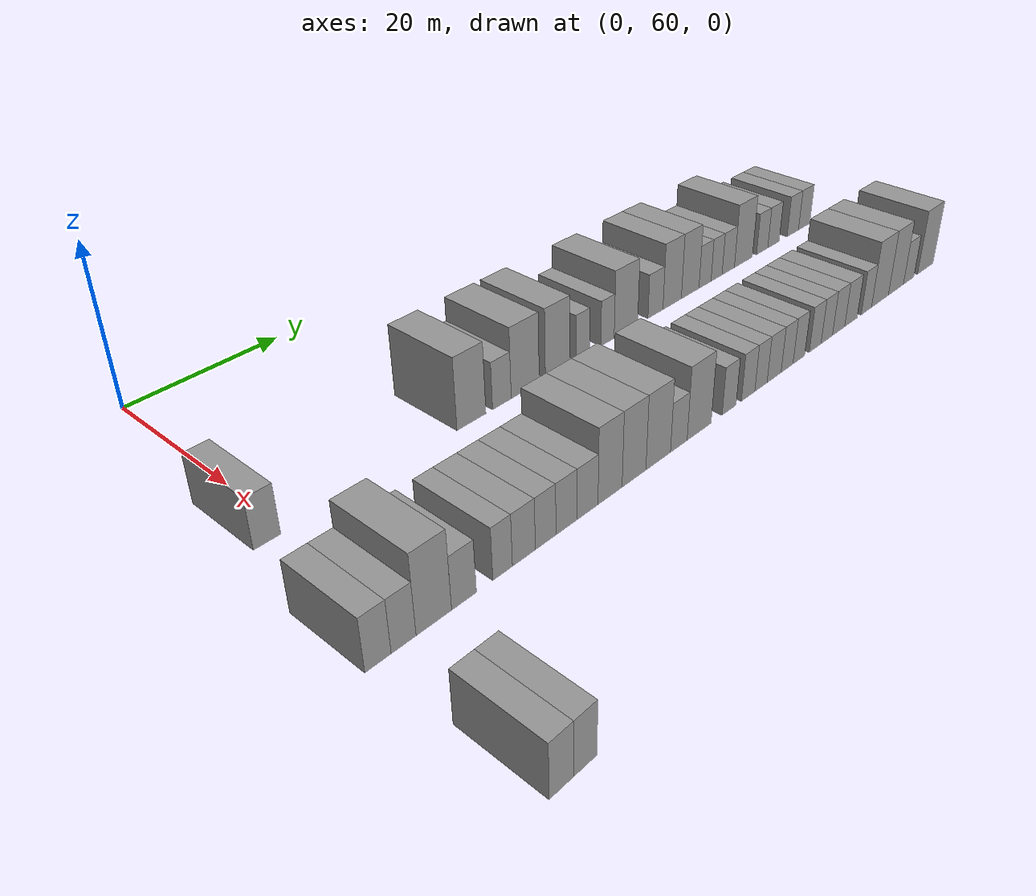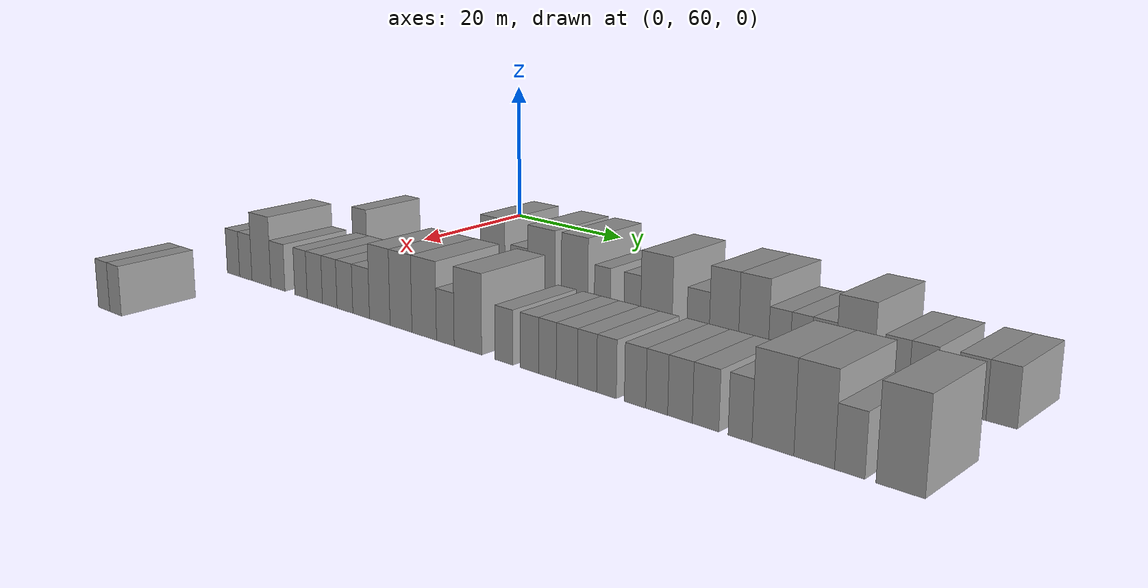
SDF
<sdf version="1.6">
 <world name="default">
  <model name="building_100">
   <static>1</static>
   <pose>25.0000 57.6530 0 0.000000 0.000000 0.000000</pose>
   <link name="link">
    <pose>0 0 3.00 0 0 0</pose>
    <collision name="collision"><geometry><box><size>10.0000 2.9990 6.0000</size></box></geometry></collision>
    <visual name="visual">
     <cast_shadows>0</cast_shadows>
     <geometry><box><size>10.0000 2.9990 6.0000</size></box></geometry>
     <material>
      <script>
       <uri>model://grey_wall/materials/scripts</uri>
       <uri>model://grey_wall/materials/textures</uri>
       <name>vrc/grey_wall</name>
      </script>
     </material>
    </visual>
   </link>
  </model>
  <model name="building_101">
   <static>1</static>
   <pose>25.0000 83.4963 0 0.000000 0.000000 0.000000</pose>
   <link name="link">
    <pose>0 0 4.50 0 0 0</pose>
    <collision name="collision"><geometry><box><size>10.0000 4.2292 9.0000</size></box></geometry></collision>
    <visual name="visual">
     <cast_shadows>0</cast_shadows>
     <geometry><box><size>10.0000 4.2292 9.0000</size></box></geometry>
     <material>
      <script>
       <uri>model://grey_wall/materials/scripts</uri>
       <uri>model://grey_wall/materials/textures</uri>
       <name>vrc/grey_wall</name>
      </script>
     </material>
    </visual>
   </link>
  </model>
  <model name="building_102">
   <static>1</static>
   <pose>25.0000 88.0461 0 0.000000 0.000000 0.000000</pose>
   <link name="link">
    <pose>0 0 3.00 0 0 0</pose>
    <collision name="collision"><geometry><box><size>10.0000 2.8705 6.0000</size></box></geometry></collision>
    <visual name="visual">
     <cast_shadows>0</cast_shadows>
     <geometry><box><size>10.0000 2.8705 6.0000</size></box></geometry>
     <material>
      <script>
       <uri>model://grey_wall/materials/scripts</uri>
       <uri>model://grey_wall/materials/textures</uri>
       <name>vrc/grey_wall</name>
      </script>
     </material>
    </visual>
   </link>
  </model>
  <model name="building_103">
   <static>1</static>
   <pose>25.0000 91.7144 0 0.000000 0.000000 0.000000</pose>
   <link name="link">
    <pose>0 0 4.50 0 0 0</pose>
    <collision name="collision"><geometry><box><size>10.0000 4.4660 9.0000</size></box></geometry></collision>
    <visual name="visual">
     <cast_shadows>0</cast_shadows>
     <geometry><box><size>10.0000 4.4660 9.0000</size></box></geometry>
     <material>
      <script>
       <uri>model://grey_wall/materials/scripts</uri>
       <uri>model://grey_wall/materials/textures</uri>
       <name>vrc/grey_wall</name>
      </script>
     </material>
    </visual>
   </link>
  </model>
  <model name="building_104">
   <static>1</static>
   <pose>25.0000 97.0129 0 0.000000 0.000000 0.000000</pose>
   <link name="link">
    <pose>0 0 4.50 0 0 0</pose>
    <collision name="collision"><geometry><box><size>10.0000 4.1311 9.0000</size></box></geometry></collision>
    <visual name="visual">
     <cast_shadows>0</cast_shadows>
     <geometry><box><size>10.0000 4.1311 9.0000</size></box></geometry>
     <material>
      <script>
       <uri>model://grey_wall/materials/scripts</uri>
       <uri>model://grey_wall/materials/textures</uri>
       <name>vrc/grey_wall</name>
      </script>
     </material>
    </visual>
   </link>
  </model>
  <model name="building_105">
   <static>1</static>
   <pose>25.0000 101.2852 0 0.000000 0.000000 0.000000</pose>
   <link name="link">
    <pose>0 0 3.00 0 0 0</pose>
    <collision name="collision"><geometry><box><size>10.0000 2.4136 6.0000</size></box></geometry></collision>
    <visual name="visual">
     <cast_shadows>0</cast_shadows>
     <geometry><box><size>10.0000 2.4136 6.0000</size></box></geometry>
     <material>
      <script>
       <uri>model://grey_wall/materials/scripts</uri>
       <uri>model://grey_wall/materials/textures</uri>
       <name>vrc/grey_wall</name>
      </script>
     </material>
    </visual>
   </link>
  </model>
  <model name="building_106">
   <static>1</static>
   <pose>25.0000 105.7017 0 0.000000 0.000000 0.000000</pose>
   <link name="link">
    <pose>0 0 3.00 0 0 0</pose>
    <collision name="collision"><geometry><box><size>10.0000 2.4194 6.0000</size></box></geometry></collision>
    <visual name="visual">
     <cast_shadows>0</cast_shadows>
     <geometry><box><size>10.0000 2.4194 6.0000</size></box></geometry>
     <material>
      <script>
       <uri>model://grey_wall/materials/scripts</uri>
       <uri>model://grey_wall/materials/textures</uri>
       <name>vrc/grey_wall</name>
      </script>
     </material>
    </visual>
   </link>
  </model>
  <model name="building_107">
   <static>1</static>
   <pose>25.0000 109.1212 0 0.000000 0.000000 0.000000</pose>
   <link name="link">
    <pose>0 0 4.50 0 0 0</pose>
    <collision name="collision"><geometry><box><size>10.0000 4.4195 9.0000</size></box></geometry></collision>
    <visual name="visual">
     <cast_shadows>0</cast_shadows>
     <geometry><box><size>10.0000 4.4195 9.0000</size></box></geometry>
     <material>
      <script>
       <uri>model://grey_wall/materials/scripts</uri>
       <uri>model://grey_wall/materials/textures</uri>
       <name>vrc/grey_wall</name>
      </script>
     </material>
    </visual>
   </link>
  </model>
  <model name="building_108">
   <static>1</static>
   <pose>25.0000 114.8176 0 0.000000 0.000000 0.000000</pose>
   <link name="link">
    <pose>0 0 3.00 0 0 0</pose>
    <collision name="collision"><geometry><box><size>10.0000 2.9733 6.0000</size></box></geometry></collision>
    <visual name="visual">
     <cast_shadows>0</cast_shadows>
     <geometry><box><size>10.0000 2.9733 6.0000</size></box></geometry>
     <material>
      <script>
       <uri>model://grey_wall/materials/scripts</uri>
       <uri>model://grey_wall/materials/textures</uri>
       <name>vrc/grey_wall</name>
      </script>
     </material>
    </visual>
   </link>
  </model>
  <model name="building_109">
   <static>1</static>
   <pose>25.0000 118.1870 0 0.000000 0.000000 0.000000</pose>
   <link name="link">
    <pose>0 0 4.50 0 0 0</pose>
    <collision name="collision"><geometry><box><size>10.0000 3.7657 9.0000</size></box></geometry></collision>
    <visual name="visual">
     <cast_shadows>0</cast_shadows>
     <geometry><box><size>10.0000 3.7657 9.0000</size></box></geometry>
     <material>
      <script>
       <uri>model://grey_wall/materials/scripts</uri>
       <uri>model://grey_wall/materials/textures</uri>
       <name>vrc/grey_wall</name>
      </script>
     </material>
    </visual>
   </link>
  </model>
  <model name="building_110">
   <static>1</static>
   <pose>25.0000 121.9311 0 0.000000 0.000000 0.000000</pose>
   <link name="link">
    <pose>0 0 4.50 0 0 0</pose>
    <collision name="collision"><geometry><box><size>10.0000 3.7226 9.0000</size></box></geometry></collision>
    <visual name="visual">
     <cast_shadows>0</cast_shadows>
     <geometry><box><size>10.0000 3.7226 9.0000</size></box></geometry>
     <material>
      <script>
       <uri>model://grey_wall/materials/scripts</uri>
       <uri>model://grey_wall/materials/textures</uri>
       <name>vrc/grey_wall</name>
      </script>
     </material>
    </visual>
   </link>
  </model>
  <model name="building_111">
   <static>1</static>
   <pose>25.0000 125.1039 0 0.000000 0.000000 0.000000</pose>
   <link name="link">
    <pose>0 0 3.00 0 0 0</pose>
    <collision name="collision"><geometry><box><size>10.0000 2.6230 6.0000</size></box></geometry></collision>
    <visual name="visual">
     <cast_shadows>0</cast_shadows>
     <geometry><box><size>10.0000 2.6230 6.0000</size></box></geometry>
     <material>
      <script>
       <uri>model://grey_wall/materials/scripts</uri>
       <uri>model://grey_wall/materials/textures</uri>
       <name>vrc/grey_wall</name>
      </script>
     </material>
    </visual>
   </link>
  </model>
  <model name="building_112">
   <static>1</static>
   <pose>25.0000 127.6429 0 0.000000 0.000000 0.000000</pose>
   <link name="link">
    <pose>0 0 3.00 0 0 0</pose>
    <collision name="collision"><geometry><box><size>10.0000 2.4549 6.0000</size></box></geometry></collision>
    <visual name="visual">
     <cast_shadows>0</cast_shadows>
     <geometry><box><size>10.0000 2.4549 6.0000</size></box></geometry>
     <material>
      <script>
       <uri>model://grey_wall/materials/scripts</uri>
       <uri>model://grey_wall/materials/textures</uri>
       <name>vrc/grey_wall</name>
      </script>
     </material>
    </visual>
   </link>
  </model>
  <model name="building_113">
   <static>1</static>
   <pose>25.0000 130.2681 0 0.000000 0.000000 0.000000</pose>
   <link name="link">
    <pose>0 0 3.00 0 0 0</pose>
    <collision name="collision"><geometry><box><size>10.0000 2.7955 6.0000</size></box></geometry></collision>
    <visual name="visual">
     <cast_shadows>0</cast_shadows>
     <geometry><box><size>10.0000 2.7955 6.0000</size></box></geometry>
     <material>
      <script>
       <uri>model://grey_wall/materials/scripts</uri>
       <uri>model://grey_wall/materials/textures</uri>
       <name>vrc/grey_wall</name>
      </script>
     </material>
    </visual>
   </link>
  </model>
  <model name="building_114">
   <static>1</static>
   <pose>25.0000 133.7626 0 0.000000 0.000000 0.000000</pose>
   <link name="link">
    <pose>0 0 4.50 0 0 0</pose>
    <collision name="collision"><geometry><box><size>10.0000 4.1936 9.0000</size></box></geometry></collision>
    <visual name="visual">
     <cast_shadows>0</cast_shadows>
     <geometry><box><size>10.0000 4.1936 9.0000</size></box></geometry>
     <material>
      <script>
       <uri>model://grey_wall/materials/scripts</uri>
       <uri>model://grey_wall/materials/textures</uri>
       <name>vrc/grey_wall</name>
      </script>
     </material>
    </visual>
   </link>
  </model>
  <model name="building_115">
   <static>1</static>
   <pose>25.0000 138.2246 0 0.000000 0.000000 0.000000</pose>
   <link name="link">
    <pose>0 0 3.00 0 0 0</pose>
    <collision name="collision"><geometry><box><size>10.0000 2.7302 6.0000</size></box></geometry></collision>
    <visual name="visual">
     <cast_shadows>0</cast_shadows>
     <geometry><box><size>10.0000 2.7302 6.0000</size></box></geometry>
     <material>
      <script>
       <uri>model://grey_wall/materials/scripts</uri>
       <uri>model://grey_wall/materials/textures</uri>
       <name>vrc/grey_wall</name>
      </script>
     </material>
    </visual>
   </link>
  </model>
  <model name="building_116">
   <static>1</static>
   <pose>25.0000 141.0039 0 0.000000 0.000000 0.000000</pose>
   <link name="link">
    <pose>0 0 3.00 0 0 0</pose>
    <collision name="collision"><geometry><box><size>10.0000 2.8284 6.0000</size></box></geometry></collision>
    <visual name="visual">
     <cast_shadows>0</cast_shadows>
     <geometry><box><size>10.0000 2.8284 6.0000</size></box></geometry>
     <material>
      <script>
       <uri>model://grey_wall/materials/scripts</uri>
       <uri>model://grey_wall/materials/textures</uri>
       <name>vrc/grey_wall</name>
      </script>
     </material>
    </visual>
   </link>
  </model>
  <model name="building_117">
   <static>1</static>
   <pose>25.0000 145.8851 0 0.000000 0.000000 0.000000</pose>
   <link name="link">
    <pose>0 0 3.00 0 0 0</pose>
    <collision name="collision"><geometry><box><size>10.0000 2.9339 6.0000</size></box></geometry></collision>
    <visual name="visual">
     <cast_shadows>0</cast_shadows>
     <geometry><box><size>10.0000 2.9339 6.0000</size></box></geometry>
     <material>
      <script>
       <uri>model://grey_wall/materials/scripts</uri>
       <uri>model://grey_wall/materials/textures</uri>
       <name>vrc/grey_wall</name>
      </script>
     </material>
    </visual>
   </link>
  </model>
  <model name="building_118">
   <static>1</static>
   <pose>25.0000 148.8297 0 0.000000 0.000000 0.000000</pose>
   <link name="link">
    <pose>0 0 3.00 0 0 0</pose>
    <collision name="collision"><geometry><box><size>10.0000 2.9553 6.0000</size></box></geometry></collision>
    <visual name="visual">
     <cast_shadows>0</cast_shadows>
     <geometry><box><size>10.0000 2.9553 6.0000</size></box></geometry>
     <material>
      <script>
       <uri>model://grey_wall/materials/scripts</uri>
       <uri>model://grey_wall/materials/textures</uri>
       <name>vrc/grey_wall</name>
      </script>
     </material>
    </visual>
   </link>
  </model>
  <model name="building_262">
   <static>1</static>
   <pose>44.0000 55.0069 0 0.000000 0.000000 0.000000</pose>
   <link name="link">
    <pose>0 0 3.00 0 0 0</pose>
    <collision name="collision"><geometry><box><size>10.0000 2.7478 6.0000</size></box></geometry></collision>
    <visual name="visual">
     <cast_shadows>0</cast_shadows>
     <geometry><box><size>10.0000 2.7478 6.0000</size></box></geometry>
     <material>
      <script>
       <uri>model://grey_wall/materials/scripts</uri>
       <uri>model://grey_wall/materials/textures</uri>
       <name>vrc/grey_wall</name>
      </script>
     </material>
    </visual>
   </link>
  </model>
  <model name="building_263">
   <static>1</static>
   <pose>44.0000 57.7232 0 0.000000 0.000000 0.000000</pose>
   <link name="link">
    <pose>0 0 3.00 0 0 0</pose>
    <collision name="collision"><geometry><box><size>10.0000 2.6848 6.0000</size></box></geometry></collision>
    <visual name="visual">
     <cast_shadows>0</cast_shadows>
     <geometry><box><size>10.0000 2.6848 6.0000</size></box></geometry>
     <material>
      <script>
       <uri>model://grey_wall/materials/scripts</uri>
       <uri>model://grey_wall/materials/textures</uri>
       <name>vrc/grey_wall</name>
      </script>
     </material>
    </visual>
   </link>
  </model>
  <model name="building_264">
   <static>1</static>
   <pose>44.0000 61.0655 0 0.000000 0.000000 0.000000</pose>
   <link name="link">
    <pose>0 0 4.50 0 0 0</pose>
    <collision name="collision"><geometry><box><size>10.0000 3.9998 9.0000</size></box></geometry></collision>
    <visual name="visual">
     <cast_shadows>0</cast_shadows>
     <geometry><box><size>10.0000 3.9998 9.0000</size></box></geometry>
     <material>
      <script>
       <uri>model://grey_wall/materials/scripts</uri>
       <uri>model://grey_wall/materials/textures</uri>
       <name>vrc/grey_wall</name>
      </script>
     </material>
    </visual>
   </link>
  </model>
  <model name="building_265">
   <static>1</static>
   <pose>44.0000 64.5210 0 0.000000 0.000000 0.000000</pose>
   <link name="link">
    <pose>0 0 3.00 0 0 0</pose>
    <collision name="collision"><geometry><box><size>10.0000 2.9110 6.0000</size></box></geometry></collision>
    <visual name="visual">
     <cast_shadows>0</cast_shadows>
     <geometry><box><size>10.0000 2.9110 6.0000</size></box></geometry>
     <material>
      <script>
       <uri>model://grey_wall/materials/scripts</uri>
       <uri>model://grey_wall/materials/textures</uri>
       <name>vrc/grey_wall</name>
      </script>
     </material>
    </visual>
   </link>
  </model>
  <model name="building_266">
   <static>1</static>
   <pose>44.0000 69.2014 0 0.000000 0.000000 0.000000</pose>
   <link name="link">
    <pose>0 0 3.00 0 0 0</pose>
    <collision name="collision"><geometry><box><size>10.0000 2.4499 6.0000</size></box></geometry></collision>
    <visual name="visual">
     <cast_shadows>0</cast_shadows>
     <geometry><box><size>10.0000 2.4499 6.0000</size></box></geometry>
     <material>
      <script>
       <uri>model://grey_wall/materials/scripts</uri>
       <uri>model://grey_wall/materials/textures</uri>
       <name>vrc/grey_wall</name>
      </script>
     </material>
    </visual>
   </link>
  </model>
  <model name="building_267">
   <static>1</static>
   <pose>44.0000 71.9105 0 0.000000 0.000000 0.000000</pose>
   <link name="link">
    <pose>0 0 3.00 0 0 0</pose>
    <collision name="collision"><geometry><box><size>10.0000 2.9683 6.0000</size></box></geometry></collision>
    <visual name="visual">
     <cast_shadows>0</cast_shadows>
     <geometry><box><size>10.0000 2.9683 6.0000</size></box></geometry>
     <material>
      <script>
       <uri>model://grey_wall/materials/scripts</uri>
       <uri>model://grey_wall/materials/textures</uri>
       <name>vrc/grey_wall</name>
      </script>
     </material>
    </visual>
   </link>
  </model>
  <model name="building_268">
   <static>1</static>
   <pose>44.0000 74.7761 0 0.000000 0.000000 0.000000</pose>
   <link name="link">
    <pose>0 0 3.00 0 0 0</pose>
    <collision name="collision"><geometry><box><size>10.0000 2.7629 6.0000</size></box></geometry></collision>
    <visual name="visual">
     <cast_shadows>0</cast_shadows>
     <geometry><box><size>10.0000 2.7629 6.0000</size></box></geometry>
     <material>
      <script>
       <uri>model://grey_wall/materials/scripts</uri>
       <uri>model://grey_wall/materials/textures</uri>
       <name>vrc/grey_wall</name>
      </script>
     </material>
    </visual>
   </link>
  </model>
  <model name="building_269">
   <static>1</static>
   <pose>44.0000 77.6205 0 0.000000 0.000000 0.000000</pose>
   <link name="link">
    <pose>0 0 3.00 0 0 0</pose>
    <collision name="collision"><geometry><box><size>10.0000 2.9257 6.0000</size></box></geometry></collision>
    <visual name="visual">
     <cast_shadows>0</cast_shadows>
     <geometry><box><size>10.0000 2.9257 6.0000</size></box></geometry>
     <material>
      <script>
       <uri>model://grey_wall/materials/scripts</uri>
       <uri>model://grey_wall/materials/textures</uri>
       <name>vrc/grey_wall</name>
      </script>
     </material>
    </visual>
   </link>
  </model>
  <model name="building_270">
   <static>1</static>
   <pose>44.0000 80.5798 0 0.000000 0.000000 0.000000</pose>
   <link name="link">
    <pose>0 0 3.00 0 0 0</pose>
    <collision name="collision"><geometry><box><size>10.0000 2.9930 6.0000</size></box></geometry></collision>
    <visual name="visual">
     <cast_shadows>0</cast_shadows>
     <geometry><box><size>10.0000 2.9930 6.0000</size></box></geometry>
     <material>
      <script>
       <uri>model://grey_wall/materials/scripts</uri>
       <uri>model://grey_wall/materials/textures</uri>
       <name>vrc/grey_wall</name>
      </script>
     </material>
    </visual>
   </link>
  </model>
  <model name="building_271">
   <static>1</static>
   <pose>44.0000 83.8766 0 0.000000 0.000000 0.000000</pose>
   <link name="link">
    <pose>0 0 4.50 0 0 0</pose>
    <collision name="collision"><geometry><box><size>10.0000 3.6007 9.0000</size></box></geometry></collision>
    <visual name="visual">
     <cast_shadows>0</cast_shadows>
     <geometry><box><size>10.0000 3.6007 9.0000</size></box></geometry>
     <material>
      <script>
       <uri>model://grey_wall/materials/scripts</uri>
       <uri>model://grey_wall/materials/textures</uri>
       <name>vrc/grey_wall</name>
      </script>
     </material>
    </visual>
   </link>
  </model>
  <model name="building_272">
   <static>1</static>
   <pose>44.0000 87.5289 0 0.000000 0.000000 0.000000</pose>
   <link name="link">
    <pose>0 0 4.50 0 0 0</pose>
    <collision name="collision"><geometry><box><size>10.0000 3.7039 9.0000</size></box></geometry></collision>
    <visual name="visual">
     <cast_shadows>0</cast_shadows>
     <geometry><box><size>10.0000 3.7039 9.0000</size></box></geometry>
     <material>
      <script>
       <uri>model://grey_wall/materials/scripts</uri>
       <uri>model://grey_wall/materials/textures</uri>
       <name>vrc/grey_wall</name>
      </script>
     </material>
    </visual>
   </link>
  </model>
  <model name="building_273">
   <static>1</static>
   <pose>44.0000 91.3777 0 0.000000 0.000000 0.000000</pose>
   <link name="link">
    <pose>0 0 4.50 0 0 0</pose>
    <collision name="collision"><geometry><box><size>10.0000 3.9936 9.0000</size></box></geometry></collision>
    <visual name="visual">
     <cast_shadows>0</cast_shadows>
     <geometry><box><size>10.0000 3.9936 9.0000</size></box></geometry>
     <material>
      <script>
       <uri>model://grey_wall/materials/scripts</uri>
       <uri>model://grey_wall/materials/textures</uri>
       <name>vrc/grey_wall</name>
      </script>
     </material>
    </visual>
   </link>
  </model>
  <model name="building_274">
   <static>1</static>
   <pose>44.0000 94.7728 0 0.000000 0.000000 0.000000</pose>
   <link name="link">
    <pose>0 0 3.00 0 0 0</pose>
    <collision name="collision"><geometry><box><size>10.0000 2.7967 6.0000</size></box></geometry></collision>
    <visual name="visual">
     <cast_shadows>0</cast_shadows>
     <geometry><box><size>10.0000 2.7967 6.0000</size></box></geometry>
     <material>
      <script>
       <uri>model://grey_wall/materials/scripts</uri>
       <uri>model://grey_wall/materials/textures</uri>
       <name>vrc/grey_wall</name>
      </script>
     </material>
    </visual>
   </link>
  </model>
  <model name="building_275">
   <static>1</static>
   <pose>44.0000 98.2723 0 0.000000 0.000000 0.000000</pose>
   <link name="link">
    <pose>0 0 4.50 0 0 0</pose>
    <collision name="collision"><geometry><box><size>10.0000 4.2023 9.0000</size></box></geometry></collision>
    <visual name="visual">
     <cast_shadows>0</cast_shadows>
     <geometry><box><size>10.0000 4.2023 9.0000</size></box></geometry>
     <material>
      <script>
       <uri>model://grey_wall/materials/scripts</uri>
       <uri>model://grey_wall/materials/textures</uri>
       <name>vrc/grey_wall</name>
      </script>
     </material>
    </visual>
   </link>
  </model>
  <model name="building_276">
   <static>1</static>
   <pose>44.0000 103.6641 0 0.000000 0.000000 0.000000</pose>
   <link name="link">
    <pose>0 0 3.00 0 0 0</pose>
    <collision name="collision"><geometry><box><size>10.0000 2.5812 6.0000</size></box></geometry></collision>
    <visual name="visual">
     <cast_shadows>0</cast_shadows>
     <geometry><box><size>10.0000 2.5812 6.0000</size></box></geometry>
     <material>
      <script>
       <uri>model://grey_wall/materials/scripts</uri>
       <uri>model://grey_wall/materials/textures</uri>
       <name>vrc/grey_wall</name>
      </script>
     </material>
    </visual>
   </link>
  </model>
  <model name="building_277">
   <static>1</static>
   <pose>44.0000 107.2426 0 0.000000 0.000000 0.000000</pose>
   <link name="link">
    <pose>0 0 3.00 0 0 0</pose>
    <collision name="collision"><geometry><box><size>10.0000 2.5758 6.0000</size></box></geometry></collision>
    <visual name="visual">
     <cast_shadows>0</cast_shadows>
     <geometry><box><size>10.0000 2.5758 6.0000</size></box></geometry>
     <material>
      <script>
       <uri>model://grey_wall/materials/scripts</uri>
       <uri>model://grey_wall/materials/textures</uri>
       <name>vrc/grey_wall</name>
      </script>
     </material>
    </visual>
   </link>
  </model>
  <model name="building_278">
   <static>1</static>
   <pose>44.0000 109.7421 0 0.000000 0.000000 0.000000</pose>
   <link name="link">
    <pose>0 0 3.00 0 0 0</pose>
    <collision name="collision"><geometry><box><size>10.0000 2.4234 6.0000</size></box></geometry></collision>
    <visual name="visual">
     <cast_shadows>0</cast_shadows>
     <geometry><box><size>10.0000 2.4234 6.0000</size></box></geometry>
     <material>
      <script>
       <uri>model://grey_wall/materials/scripts</uri>
       <uri>model://grey_wall/materials/textures</uri>
       <name>vrc/grey_wall</name>
      </script>
     </material>
    </visual>
   </link>
  </model>
  <model name="building_279">
   <static>1</static>
   <pose>44.0000 112.3672 0 0.000000 0.000000 0.000000</pose>
   <link name="link">
    <pose>0 0 3.00 0 0 0</pose>
    <collision name="collision"><geometry><box><size>10.0000 2.8268 6.0000</size></box></geometry></collision>
    <visual name="visual">
     <cast_shadows>0</cast_shadows>
     <geometry><box><size>10.0000 2.8268 6.0000</size></box></geometry>
     <material>
      <script>
       <uri>model://grey_wall/materials/scripts</uri>
       <uri>model://grey_wall/materials/textures</uri>
       <name>vrc/grey_wall</name>
      </script>
     </material>
    </visual>
   </link>
  </model>
  <model name="building_280">
   <static>1</static>
   <pose>44.0000 115.0189 0 0.000000 0.000000 0.000000</pose>
   <link name="link">
    <pose>0 0 3.00 0 0 0</pose>
    <collision name="collision"><geometry><box><size>10.0000 2.4765 6.0000</size></box></geometry></collision>
    <visual name="visual">
     <cast_shadows>0</cast_shadows>
     <geometry><box><size>10.0000 2.4765 6.0000</size></box></geometry>
     <material>
      <script>
       <uri>model://grey_wall/materials/scripts</uri>
       <uri>model://grey_wall/materials/textures</uri>
       <name>vrc/grey_wall</name>
      </script>
     </material>
    </visual>
   </link>
  </model>
  <model name="building_281">
   <static>1</static>
   <pose>44.0000 117.4946 0 0.000000 0.000000 0.000000</pose>
   <link name="link">
    <pose>0 0 3.00 0 0 0</pose>
    <collision name="collision"><geometry><box><size>10.0000 2.4749 6.0000</size></box></geometry></collision>
    <visual name="visual">
     <cast_shadows>0</cast_shadows>
     <geometry><box><size>10.0000 2.4749 6.0000</size></box></geometry>
     <material>
      <script>
       <uri>model://grey_wall/materials/scripts</uri>
       <uri>model://grey_wall/materials/textures</uri>
       <name>vrc/grey_wall</name>
      </script>
     </material>
    </visual>
   </link>
  </model>
  <model name="building_282">
   <static>1</static>
   <pose>44.0000 121.0312 0 0.000000 0.000000 0.000000</pose>
   <link name="link">
    <pose>0 0 3.00 0 0 0</pose>
    <collision name="collision"><geometry><box><size>10.0000 2.5983 6.0000</size></box></geometry></collision>
    <visual name="visual">
     <cast_shadows>0</cast_shadows>
     <geometry><box><size>10.0000 2.5983 6.0000</size></box></geometry>
     <material>
      <script>
       <uri>model://grey_wall/materials/scripts</uri>
       <uri>model://grey_wall/materials/textures</uri>
       <name>vrc/grey_wall</name>
      </script>
     </material>
    </visual>
   </link>
  </model>
  <model name="building_283">
   <static>1</static>
   <pose>44.0000 123.6171 0 0.000000 0.000000 0.000000</pose>
   <link name="link">
    <pose>0 0 3.00 0 0 0</pose>
    <collision name="collision"><geometry><box><size>10.0000 2.5735 6.0000</size></box></geometry></collision>
    <visual name="visual">
     <cast_shadows>0</cast_shadows>
     <geometry><box><size>10.0000 2.5735 6.0000</size></box></geometry>
     <material>
      <script>
       <uri>model://grey_wall/materials/scripts</uri>
       <uri>model://grey_wall/materials/textures</uri>
       <name>vrc/grey_wall</name>
      </script>
     </material>
    </visual>
   </link>
  </model>
  <model name="building_284">
   <static>1</static>
   <pose>44.0000 126.3140 0 0.000000 0.000000 0.000000</pose>
   <link name="link">
    <pose>0 0 3.00 0 0 0</pose>
    <collision name="collision"><geometry><box><size>10.0000 2.8205 6.0000</size></box></geometry></collision>
    <visual name="visual">
     <cast_shadows>0</cast_shadows>
     <geometry><box><size>10.0000 2.8205 6.0000</size></box></geometry>
     <material>
      <script>
       <uri>model://grey_wall/materials/scripts</uri>
       <uri>model://grey_wall/materials/textures</uri>
       <name>vrc/grey_wall</name>
      </script>
     </material>
    </visual>
   </link>
  </model>
  <model name="building_285">
   <static>1</static>
   <pose>44.0000 129.1944 0 0.000000 0.000000 0.000000</pose>
   <link name="link">
    <pose>0 0 3.00 0 0 0</pose>
    <collision name="collision"><geometry><box><size>10.0000 2.9402 6.0000</size></box></geometry></collision>
    <visual name="visual">
     <cast_shadows>0</cast_shadows>
     <geometry><box><size>10.0000 2.9402 6.0000</size></box></geometry>
     <material>
      <script>
       <uri>model://grey_wall/materials/scripts</uri>
       <uri>model://grey_wall/materials/textures</uri>
       <name>vrc/grey_wall</name>
      </script>
     </material>
    </visual>
   </link>
  </model>
  <model name="building_286">
   <static>1</static>
   <pose>44.0000 132.9292 0 0.000000 0.000000 0.000000</pose>
   <link name="link">
    <pose>0 0 3.00 0 0 0</pose>
    <collision name="collision"><geometry><box><size>10.0000 2.5294 6.0000</size></box></geometry></collision>
    <visual name="visual">
     <cast_shadows>0</cast_shadows>
     <geometry><box><size>10.0000 2.5294 6.0000</size></box></geometry>
     <material>
      <script>
       <uri>model://grey_wall/materials/scripts</uri>
       <uri>model://grey_wall/materials/textures</uri>
       <name>vrc/grey_wall</name>
      </script>
     </material>
    </visual>
   </link>
  </model>
  <model name="building_287">
   <static>1</static>
   <pose>44.0000 136.3269 0 0.000000 0.000000 0.000000</pose>
   <link name="link">
    <pose>0 0 4.50 0 0 0</pose>
    <collision name="collision"><geometry><box><size>10.0000 4.2661 9.0000</size></box></geometry></collision>
    <visual name="visual">
     <cast_shadows>0</cast_shadows>
     <geometry><box><size>10.0000 4.2661 9.0000</size></box></geometry>
     <material>
      <script>
       <uri>model://grey_wall/materials/scripts</uri>
       <uri>model://grey_wall/materials/textures</uri>
       <name>vrc/grey_wall</name>
      </script>
     </material>
    </visual>
   </link>
  </model>
  <model name="building_288">
   <static>1</static>
   <pose>44.0000 140.4397 0 0.000000 0.000000 0.000000</pose>
   <link name="link">
    <pose>0 0 4.50 0 0 0</pose>
    <collision name="collision"><geometry><box><size>10.0000 3.9594 9.0000</size></box></geometry></collision>
    <visual name="visual">
     <cast_shadows>0</cast_shadows>
     <geometry><box><size>10.0000 3.9594 9.0000</size></box></geometry>
     <material>
      <script>
       <uri>model://grey_wall/materials/scripts</uri>
       <uri>model://grey_wall/materials/textures</uri>
       <name>vrc/grey_wall</name>
      </script>
     </material>
    </visual>
   </link>
  </model>
  <model name="building_289">
   <static>1</static>
   <pose>44.0000 143.8342 0 0.000000 0.000000 0.000000</pose>
   <link name="link">
    <pose>0 0 3.00 0 0 0</pose>
    <collision name="collision"><geometry><box><size>10.0000 2.8296 6.0000</size></box></geometry></collision>
    <visual name="visual">
     <cast_shadows>0</cast_shadows>
     <geometry><box><size>10.0000 2.8296 6.0000</size></box></geometry>
     <material>
      <script>
       <uri>model://grey_wall/materials/scripts</uri>
       <uri>model://grey_wall/materials/textures</uri>
       <name>vrc/grey_wall</name>
      </script>
     </material>
    </visual>
   </link>
  </model>
  <model name="building_290">
   <static>1</static>
   <pose>44.0000 148.4282 0 0.000000 0.000000 0.000000</pose>
   <link name="link">
    <pose>0 0 4.50 0 0 0</pose>
    <collision name="collision"><geometry><box><size>10.0000 4.3584 9.0000</size></box></geometry></collision>
    <visual name="visual">
     <cast_shadows>0</cast_shadows>
     <geometry><box><size>10.0000 4.3584 9.0000</size></box></geometry>
     <material>
      <script>
       <uri>model://grey_wall/materials/scripts</uri>
       <uri>model://grey_wall/materials/textures</uri>
       <name>vrc/grey_wall</name>
      </script>
     </material>
    </visual>
   </link>
  </model>
  <model name="building_447">
   <static>1</static>
   <pose>63.0000 56.2046 0 0.000000 0.000000 0.000000</pose>
   <link name="link">
    <pose>0 0 3.00 0 0 0</pose>
    <collision name="collision"><geometry><box><size>10.0000 2.6113 6.0000</size></box></geometry></collision>
    <visual name="visual">
     <cast_shadows>0</cast_shadows>
     <geometry><box><size>10.0000 2.6113 6.0000</size></box></geometry>
     <material>
      <script>
       <uri>model://grey_wall/materials/scripts</uri>
       <uri>model://grey_wall/materials/textures</uri>
       <name>vrc/grey_wall</name>
      </script>
     </material>
    </visual>
   </link>
  </model>
  <model name="building_448">
   <static>1</static>
   <pose>63.0000 58.7905 0 0.000000 0.000000 0.000000</pose>
   <link name="link">
    <pose>0 0 3.00 0 0 0</pose>
    <collision name="collision"><geometry><box><size>10.0000 2.5604 6.0000</size></box></geometry></collision>
    <visual name="visual">
     <cast_shadows>0</cast_shadows>
     <geometry><box><size>10.0000 2.5604 6.0000</size></box></geometry>
     <material>
      <script>
       <uri>model://grey_wall/materials/scripts</uri>
       <uri>model://grey_wall/materials/textures</uri>
       <name>vrc/grey_wall</name>
      </script>
     </material>
    </visual>
   </link>
  </model>
 </world>
</sdf>
